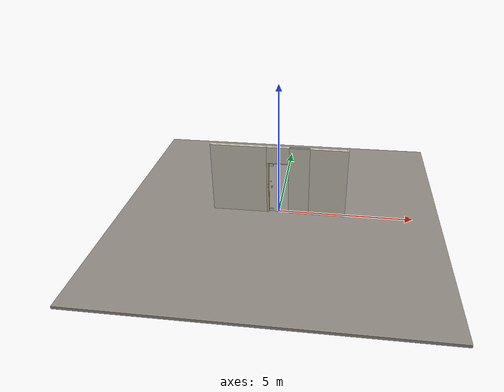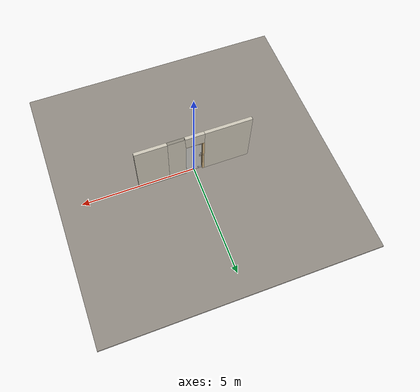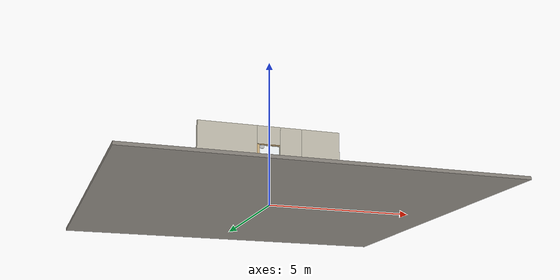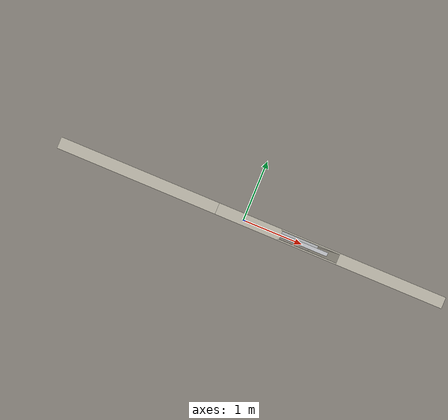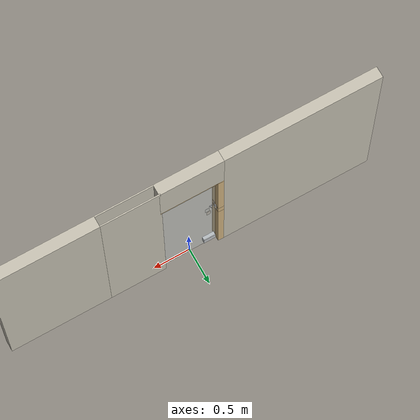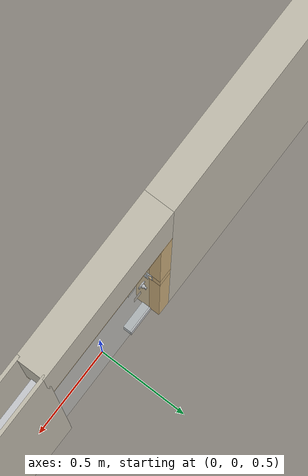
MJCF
<?xml version="1.0" ?>
<mujoco model="db0067_sliding_single_simple">
  <compiler angle="radian" meshdir="../../hardware" texturedir="../../textures" autolimits="true" inertiafromgeom="false"/>
  <option timestep="0.002" integrator="implicitfast" cone="elliptic" impratio="10" noslip_iterations="3">
    <flag multiccd="enable"/>
  </option>
  <size memory="16M"/>
  <default>
    <geom condim="4" solref="0.005 1" solimp="0.95 0.99 0.001"/>
    <joint solreflimit="0.005 1" solimplimit="0.95 0.99 0.001"/>
    <tendon solreflimit="0.005 1"/>
    <equality solref="0.002 1"/>
  </default>
  <visual>
    <headlight ambient="0.4 0.4 0.4" diffuse="0.7 0.7 0.7" specular="0.2 0.2 0.2"/>
    <quality shadowsize="4096"/>
    <map znear="0.01" zfar="60"/>
  </visual>
  <asset>
    <mesh name="thumbturn_eb5c9899a3" file="thumbturn_eb5c9899a3.obj"/>
    <material name="mat_floor" rgba="0.55 0.53 0.5 1" specular="0.2" shininess="0.15" reflectance="0"/>
    <material name="mat_wall" rgba="0.78 0.76 0.7 1" specular="0.2" shininess="0.1" reflectance="0"/>
    <material name="mat_frame" rgba="0.82 0.7 0.5 1" specular="0.2" shininess="0.45" reflectance="0"/>
    <material name="mat_track" rgba="0.8 0.81 0.83 1" specular="0.8" shininess="0.6" reflectance="0.4"/>
    <material name="mat_leaf" rgba="0.85 0.92 0.95 0.25" specular="0.2" shininess="0.95" reflectance="0.1"/>
    <material name="mat_glass_leaf" rgba="0.85 0.92 0.95 0.25" specular="0.2" shininess="0.95" reflectance="0.1"/>
    <material name="mat_patch" rgba="0.75 0.76 0.77 1" specular="0.8" shininess="0.65" reflectance="0.4"/>
    <material name="mat_roller" rgba="0.65 0.66 0.68 1" specular="0.74" shininess="0.5" reflectance="0.36"/>
    <material name="mat_op_nickel_satin" rgba="0.72 0.7 0.66 1" specular="0.8" shininess="0.65" reflectance="0.4"/>
    <material name="mat_hook" rgba="0.75 0.76 0.77 1" specular="0.8" shininess="0.65" reflectance="0.4"/>
    <texture name="skybox" type="skybox" builtin="gradient" rgb1="0.6 0.7 0.85" rgb2="0.9 0.92 0.95" width="256" height="256"/>
  </asset>
  <worldbody>
    <light name="sun" pos="1.5 -2.5 4" dir="-0.3 0.5 -0.8" directional="true" diffuse="0.8 0.8 0.8" specular="0.3 0.3 0.3" castshadow="true"/>
    <light name="fill" pos="-1.5 2.5 3" dir="0.3 -0.5 -0.7" directional="true" diffuse="0.35 0.35 0.4" castshadow="false"/>
    <camera name="robot_view" pos="0 -2.54875 1.73965" xyaxes="1 0 0 0 0.26963 0.962964" fovy="52"/>
    <camera name="far_view" pos="0 2.54875 1.73965" xyaxes="-1 0 0 0 -0.26963 0.962964" fovy="52"/>
    <camera name="iso" pos="1.93705 -2.14095 2.14745" xyaxes="0.741536 0.670913 0 -0.242917 0.268487 0.932151" fovy="46"/>
    <camera name="detail_handle" pos="-0.0855 -0.8175 1.33" xyaxes="0.97561 0.219512 0 -0.070934 0.315262 0.94635" fovy="38"/>
    <geom name="floor" type="box" size="6 6 0.05" pos="0 0 -0.05" material="mat_floor" group="0" contype="1" conaffinity="1" friction="0.8 0.005 0.0001" density="2400"/>
    <geom name="wall_left" type="box" size="1.02775 0.0725 1.35" pos="-1.47225 0 1.35" material="mat_wall" group="0" contype="1" conaffinity="1" friction="0.6 0.005 0.0001" density="800"/>
    <geom name="wall_header" type="box" size="0.4145 0.0725 0.3145" pos="-0.03 0 2.3855" material="mat_wall" group="0" contype="1" conaffinity="1" friction="0.6 0.005 0.0001" density="800"/>
    <geom name="pocket_skin_n" type="box" size="0.3805 0.008 1.35" pos="0.746 -0.0645 1.35" material="mat_wall" group="0" contype="1" conaffinity="1" friction="0.6 0.005 0.0001" density="800"/>
    <geom name="pocket_skin_p" type="box" size="0.3805 0.008 1.35" pos="0.746 0.0645 1.35" material="mat_wall" group="0" contype="1" conaffinity="1" friction="0.6 0.005 0.0001" density="800"/>
    <geom name="wall_pocket_far" type="box" size="0.68675 0.0725 1.35" pos="1.81325 0 1.35" material="mat_wall" group="0" contype="1" conaffinity="1" friction="0.6 0.005 0.0001" density="800"/>
    <geom name="jamb_head" type="box" size="0.3845 0.0725 0.0095" pos="0 0 2.0615" material="mat_frame" group="0" contype="1" conaffinity="1" friction="0.6 0.005 0.0001" density="300"/>
    <geom name="track_header" type="box" size="0.743 0.025 0.04" pos="0.3375 0 2.111" material="mat_track" group="0" contype="1" conaffinity="1" friction="0.6 0.005 0.0001" density="2700"/>
    <geom name="leaf_hook_keeper" type="box" size="0.008 0.015 0.006" pos="-0.3735 0 1.13" material="mat_hook" group="0" contype="1" conaffinity="1" friction="0.6 0.005 0.0001" density="7900"/>
    <geom name="jamb_latch_pwall_1130_n" type="box" size="0.0395 0.0245 0.06" pos="-0.405 -0.048 1.13" material="mat_frame" group="0" contype="1" conaffinity="1" friction="0.6 0.005 0.0001" density="300"/>
    <geom name="jamb_latch_pwall_1130_p" type="box" size="0.0395 0.0245 0.06" pos="-0.405 0.048 1.13" material="mat_frame" group="0" contype="1" conaffinity="1" friction="0.6 0.005 0.0001" density="300"/>
    <geom name="jamb_latch_pback_1130" type="box" size="0.004 0.0235 0.06" pos="-0.4405 0 1.13" material="mat_frame" group="0" contype="1" conaffinity="1" friction="0.6 0.005 0.0001" density="300"/>
    <geom name="jamb_latch_0" type="box" size="0.0395 0.0725 0.535" pos="-0.405 0 0.535" material="mat_frame" group="0" contype="1" conaffinity="1" friction="0.6 0.005 0.0001" density="300"/>
    <geom name="jamb_latch_1" type="box" size="0.0395 0.0725 0.431" pos="-0.405 0 1.621" material="mat_frame" group="0" contype="1" conaffinity="1" friction="0.6 0.005 0.0001" density="300"/>
    <geom name="leaf_hook_keeper_plate_b" type="box" size="0.0295 0.003 0.0005" pos="-0.365 0 1.067" quat="0.5 0.5 0.5 0.5" material="mat_hook" group="1" contype="0" conaffinity="0" density="7800"/>
    <geom name="leaf_hook_keeper_plate_l" type="box" size="0.003 0.06 0.0005" pos="-0.365 -0.0265 1.13" quat="0.5 0.5 0.5 0.5" material="mat_hook" group="1" contype="0" conaffinity="0" density="7800"/>
    <geom name="leaf_hook_keeper_plate_t" type="box" size="0.0295 0.003 0.0005" pos="-0.365 0 1.193" quat="0.5 0.5 0.5 0.5" material="mat_hook" group="1" contype="0" conaffinity="0" density="7800"/>
    <geom name="leaf_hook_keeper_plate_r" type="box" size="0.003 0.06 0.0005" pos="-0.365 0.0265 1.13" quat="0.5 0.5 0.5 0.5" material="mat_hook" group="1" contype="0" conaffinity="0" density="7800"/>
    <geom name="track_header_bracket" type="box" size="0.5944 0.01625 0.032" pos="0.3375 0.04075 2.111" material="mat_hook" group="1" contype="0" conaffinity="0" density="7850"/>
    <geom name="leaf_hook_keeper_bracket" type="box" size="0.0064 0.00475 0.005" pos="-0.3735 0.01925 1.13" material="mat_hook" group="1" contype="0" conaffinity="0" density="7850"/>
    <site name="approach_point" pos="0 -1.5 0" quat="1 0 0 0" size="0.05" rgba="0.2 0.9 0.2 0.5" group="4"/>
    <site name="goal_point" pos="0 1.5 0" quat="1 0 0 0" size="0.05" rgba="0.2 0.9 0.2 0.5" group="4"/>
    <site name="door_plane_center" pos="0 0 1.026" quat="1 0 0 0" size="0.02" rgba="0.2 0.9 0.2 0.5" group="4"/>
    <body name="leaf" pos="0 0 0">
      <inertial pos="-0.001538 0 1.028336" mass="27.157512" quat="0.500096 0.500096 0.499904 -0.499904" diaginertia="1.154970365 9.309875394 10.459290427"/>
      <joint name="leaf_slide" type="slide" axis="1 0 0" limited="true" range="0 0.675" damping="3.370425" frictionloss="11.288996" armature="0.5"/>
      <geom name="leaf_glass" type="box" size="0.3555 0.0175 1.016" pos="0 0 1.028" material="mat_glass_leaf" group="0" contype="1" conaffinity="1" friction="0.4 0.005 0.0001" density="1"/>
      <geom name="leaf_patch_bot" type="box" size="0.08 0.0255 0.05" pos="-0.2755 0 0.072" material="mat_patch" group="1" contype="0" conaffinity="0" density="1"/>
      <geom name="leaf_patch_top" type="box" size="0.08 0.0255 0.05" pos="-0.2755 0 1.984" material="mat_patch" group="1" contype="0" conaffinity="0" density="1"/>
      <geom name="leaf_pull_n" type="box" size="0.025 0.0005 0.05" pos="-0.2655 -0.018 1.05" material="mat_op_nickel_satin" group="1" contype="0" conaffinity="0" density="1000"/>
      <geom name="leaf_pull_p" type="box" size="0.025 0.0005 0.05" pos="-0.2655 0.018 1.05" material="mat_op_nickel_satin" group="1" contype="0" conaffinity="0" density="1000"/>
      <geom name="leaf_hook_faceplate" type="box" size="0.0006 0.011 0.045" pos="-0.3549 0 1.13" material="mat_hook" group="1" contype="0" conaffinity="0" density="7900"/>
      <site name="leaf_pull_grip_n" pos="-0.2655 -0.0175 1.05" quat="1 0 0 0" size="0.012" rgba="0.2 0.9 0.2 0.5" group="4"/>
      <site name="leaf_pull_grip_p" pos="-0.2655 0.0175 1.05" quat="1 0 0 0" size="0.012" rgba="0.2 0.9 0.2 0.5" group="4"/>
      <site name="leaf_edge_mid" pos="-0.3555 0 1.028" quat="1 0 0 0" size="0.02" rgba="0.2 0.9 0.2 0.5" group="4"/>
      <body name="leaf_hook_thumbturn" pos="-0.2955 0.0175 1.27">
        <inertial pos="0 0.012928 0" mass="0.178946" quat="0.5 0.5 0.5 0.5" diaginertia="0.000026045 0.000026215 0.000032438"/>
        <joint name="leaf_hook_thumbturn_hinge" type="hinge" axis="0 -1 0" limited="true" range="0 0.05" damping="0.05" frictionloss="0.25" armature="0.005"/>
        <geom name="leaf_hook_tt_mesh" type="mesh" mesh="thumbturn_eb5c9899a3" pos="0 0 0" quat="0 0 0.707107 0.707107" material="mat_hook" group="0" contype="1" conaffinity="1" friction="0.6 0.005 0.0001" density="7100"/>
        <geom name="leaf_hook_tt_col" type="box" size="0.006 0.012 0.016" pos="0 0.02 0" material="mat_hook" group="3" contype="1" conaffinity="1" rgba="0.8 0.3 0.3 0.25" friction="0.6 0.005 0.0001" density="7100"/>
        <site name="leaf_hook_tt_grip" pos="0 0.03 0" quat="1 0 0 0" size="0.01" rgba="0.2 0.9 0.2 0.5" group="4"/>
      </body>
      <body name="leaf_hook" pos="-0.3555 0 1.13">
        <inertial pos="-0.026737 0 -0.009263" mass="0.072048" quat="0.200817 0.200817 -0.677991 0.677991" diaginertia="0.000005266 0.00001511 0.000019175"/>
        <joint name="leaf_hook_hinge" type="hinge" axis="0 -1 0" limited="true" range="0 1" damping="0.05" frictionloss="0.1" armature="0.005"/>
        <geom name="leaf_hook_arm" type="box" size="0.022 0.005 0.006" pos="-0.02 0 -0.016" material="mat_hook" group="0" contype="1" conaffinity="1" friction="0.6 0.005 0.0001" density="7900"/>
        <geom name="leaf_hook_tip" type="box" size="0.006 0.005 0.016" pos="-0.036 0 0" material="mat_hook" group="0" contype="1" conaffinity="1" friction="0.6 0.005 0.0001" density="7900"/>
      </body>
    </body>
  </worldbody>
  <equality>
    <joint name="leaf_hook_couple" joint1="leaf_hook_hinge" joint2="leaf_hook_thumbturn_hinge" polycoef="0 1 0 0 0" active="true"/>
  </equality>
  <sensor>
    <jointpos name="leaf_slide_pos" joint="leaf_slide"/>
    <jointvel name="leaf_slide_vel" joint="leaf_slide"/>
    <jointpos name="leaf_hook_thumbturn_hinge_pos" joint="leaf_hook_thumbturn_hinge"/>
    <jointvel name="leaf_hook_thumbturn_hinge_vel" joint="leaf_hook_thumbturn_hinge"/>
    <jointpos name="leaf_hook_hinge_pos" joint="leaf_hook_hinge"/>
    <jointvel name="leaf_hook_hinge_vel" joint="leaf_hook_hinge"/>
  </sensor>
</mujoco>
